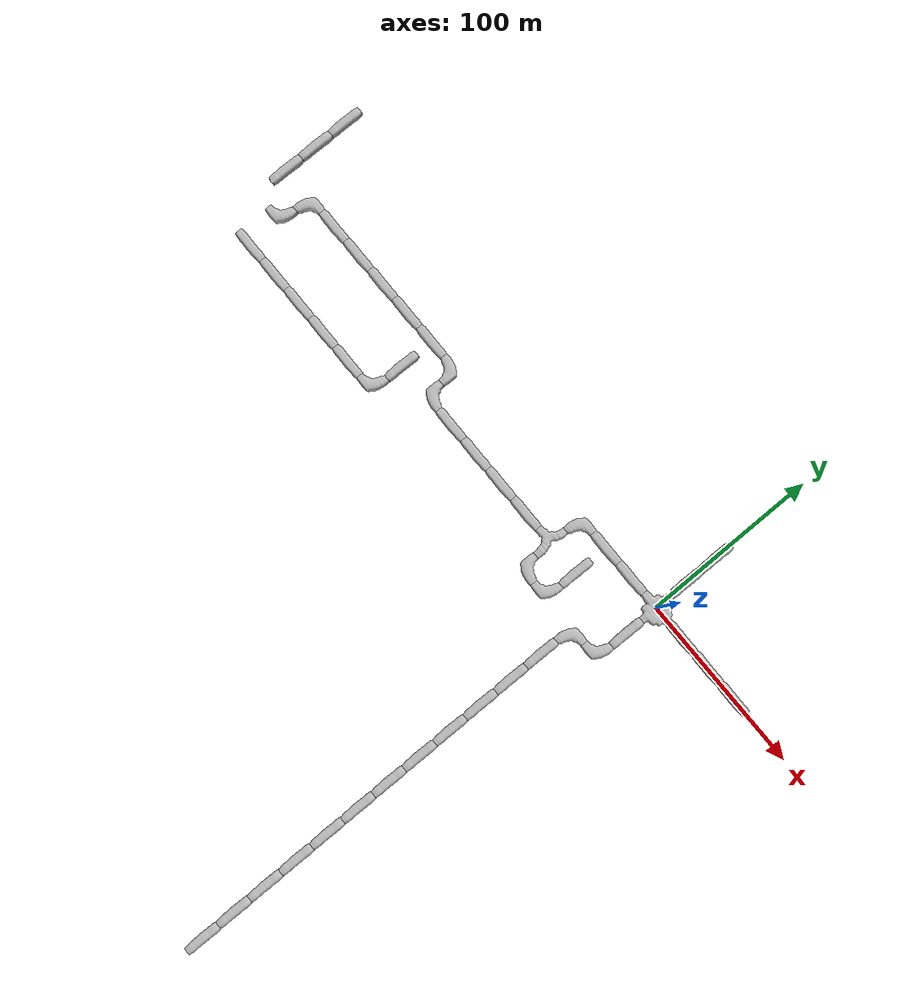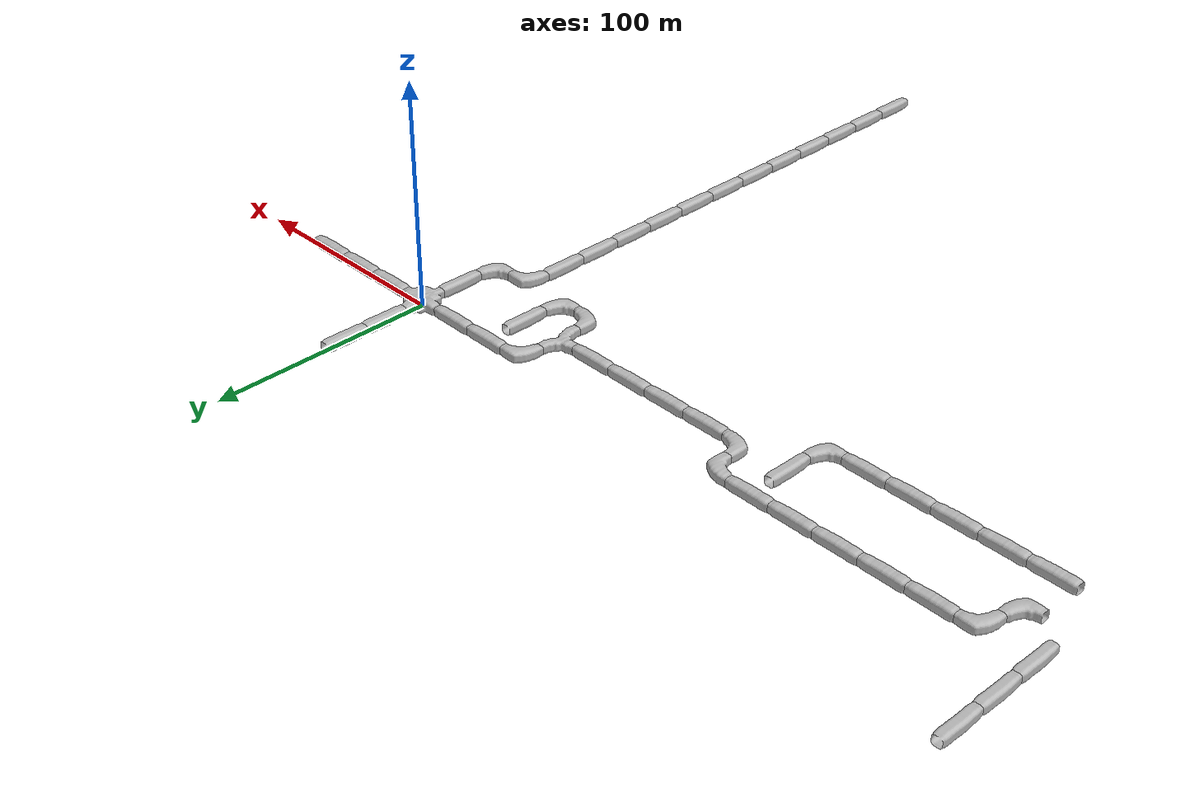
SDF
<sdf version="1.6">
 <world name="cave_16000_4">
  <include>
   <static>true</static>
   <name>cave_0_0</name>
   <pose>0 0 0 0 0 -1.5707963267948966</pose>
   <uri>model://cave_4way_20m</uri>
  </include>
  <include>
   <static>true</static>
   <name>cave_1_0</name>
   <pose>20 0 0 0 0 1.5707963267948966</pose>
   <uri>model://cave_straight_20m</uri>
  </include>
  <include>
   <static>true</static>
   <name>cave_2_0</name>
   <pose>40 0 0 0 0 1.5707963267948966</pose>
   <uri>model://cave_straight_20m</uri>
  </include>
  <include>
   <static>true</static>
   <name>cave_3_0</name>
   <pose>60 0 0 0 0 1.5707963267948966</pose>
   <uri>model://cave_straight_20m</uri>
  </include>
  <include>
   <static>true</static>
   <name>cave_0_-1</name>
   <pose>0 -20 0 0 0 0.0</pose>
   <uri>model://cave_straight_20m</uri>
  </include>
  <include>
   <static>true</static>
   <name>cave_0_-2</name>
   <pose>0 -40 0 0 0 1.5707963267948966</pose>
   <uri>model://cave_L_20m</uri>
  </include>
  <include>
   <static>true</static>
   <name>cave_-1_-2</name>
   <pose>-20 -40 0 0 0 -1.5707963267948966</pose>
   <uri>model://cave_L_20m</uri>
  </include>
  <include>
   <static>true</static>
   <name>cave_-1_-3</name>
   <pose>-20 -60 0 0 0 0.0</pose>
   <uri>model://cave_straight_20m</uri>
  </include>
  <include>
   <static>true</static>
   <name>cave_-1_-4</name>
   <pose>-20 -80 0 0 0 0.0</pose>
   <uri>model://cave_straight_20m</uri>
  </include>
  <include>
   <static>true</static>
   <name>cave_-1_-5</name>
   <pose>-20 -100 0 0 0 0.0</pose>
   <uri>model://cave_straight_20m</uri>
  </include>
  <include>
   <static>true</static>
   <name>cave_-1_-6</name>
   <pose>-20 -120 0 0 0 0.0</pose>
   <uri>model://cave_straight_20m</uri>
  </include>
  <include>
   <static>true</static>
   <name>cave_-1_-7</name>
   <pose>-20 -140 0 0 0 0.0</pose>
   <uri>model://cave_straight_20m</uri>
  </include>
  <include>
   <static>true</static>
   <name>cave_-1_-8</name>
   <pose>-20 -160 0 0 0 0.0</pose>
   <uri>model://cave_straight_20m</uri>
  </include>
  <include>
   <static>true</static>
   <name>cave_-1_-9</name>
   <pose>-20 -180 0 0 0 0.0</pose>
   <uri>model://cave_straight_20m</uri>
  </include>
  <include>
   <static>true</static>
   <name>cave_-1_-10</name>
   <pose>-20 -200 0 0 0 0.0</pose>
   <uri>model://cave_straight_20m</uri>
  </include>
  <include>
   <static>true</static>
   <name>cave_-1_-11</name>
   <pose>-20 -220 0 0 0 0.0</pose>
   <uri>model://cave_straight_20m</uri>
  </include>
  <include>
   <static>true</static>
   <name>cave_-1_-12</name>
   <pose>-20 -240 0 0 0 0.0</pose>
   <uri>model://cave_straight_20m</uri>
  </include>
  <include>
   <static>true</static>
   <name>cave_-1_-13</name>
   <pose>-20 -260 0 0 0 0.0</pose>
   <uri>model://cave_straight_20m</uri>
  </include>
  <include>
   <static>true</static>
   <name>cave_-1_-14</name>
   <pose>-20 -280 0 0 0 0.0</pose>
   <uri>model://cave_straight_20m</uri>
  </include>
  <include>
   <static>true</static>
   <name>cave_-1_0</name>
   <pose>-20 0 0 0 0 1.5707963267948966</pose>
   <uri>model://cave_straight_20m</uri>
  </include>
  <include>
   <static>true</static>
   <name>cave_-2_0</name>
   <pose>-40 0 0 0 0 1.5707963267948966</pose>
   <uri>model://cave_straight_20m</uri>
  </include>
  <include>
   <static>true</static>
   <name>cave_-3_0</name>
   <pose>-60 0 0 0 0 -1.5707963267948966</pose>
   <uri>model://cave_L_20m</uri>
  </include>
  <include>
   <static>true</static>
   <name>cave_-3_-1</name>
   <pose>-60 -20 0 0 0 1.5707963267948966</pose>
   <uri>model://cave_3way_20m</uri>
  </include>
  <include>
   <static>true</static>
   <name>cave_-3_-2</name>
   <pose>-60 -40 0 0 0 0.0</pose>
   <uri>model://cave_L_20m</uri>
  </include>
  <include>
   <static>true</static>
   <name>cave_-2_-2</name>
   <pose>-40 -40 0 0 0 1.5707963267948966</pose>
   <uri>model://cave_L_20m</uri>
  </include>
  <include>
   <static>true</static>
   <name>cave_-2_-1</name>
   <pose>-40 -20 0 0 0 0.0</pose>
   <uri>model://cave_straight_20m</uri>
  </include>
  <include>
   <static>true</static>
   <name>cave_-4_-1</name>
   <pose>-80 -20 0 0 0 1.5707963267948966</pose>
   <uri>model://cave_straight_20m</uri>
  </include>
  <include>
   <static>true</static>
   <name>cave_-5_-1</name>
   <pose>-100 -20 0 0 0 1.5707963267948966</pose>
   <uri>model://cave_straight_20m</uri>
  </include>
  <include>
   <static>true</static>
   <name>cave_-6_-1</name>
   <pose>-120 -20 0 0 0 1.5707963267948966</pose>
   <uri>model://cave_straight_20m</uri>
  </include>
  <include>
   <static>true</static>
   <name>cave_-7_-1</name>
   <pose>-140 -20 0 0 0 1.5707963267948966</pose>
   <uri>model://cave_straight_20m</uri>
  </include>
  <include>
   <static>true</static>
   <name>cave_-8_-1</name>
   <pose>-160 -20 0 0 0 0.0</pose>
   <uri>model://cave_L_20m</uri>
  </include>
  <include>
   <static>true</static>
   <name>cave_-8_0</name>
   <pose>-160 0 0 0 0 3.141592653589793</pose>
   <uri>model://cave_L_20m</uri>
  </include>
  <include>
   <static>true</static>
   <name>cave_-9_0</name>
   <pose>-180 0 0 0 0 1.5707963267948966</pose>
   <uri>model://cave_straight_20m</uri>
  </include>
  <include>
   <static>true</static>
   <name>cave_-10_0</name>
   <pose>-200 0 0 0 0 1.5707963267948966</pose>
   <uri>model://cave_straight_20m</uri>
  </include>
  <include>
   <static>true</static>
   <name>cave_-11_0</name>
   <pose>-220 0 0 0 0 1.5707963267948966</pose>
   <uri>model://cave_straight_20m</uri>
  </include>
  <include>
   <static>true</static>
   <name>cave_-12_0</name>
   <pose>-240 0 0 0 0 1.5707963267948966</pose>
   <uri>model://cave_straight_20m</uri>
  </include>
  <include>
   <static>true</static>
   <name>cave_-13_0</name>
   <pose>-260 0 0 0 0 1.5707963267948966</pose>
   <uri>model://cave_straight_20m</uri>
  </include>
  <include>
   <static>true</static>
   <name>cave_-14_0</name>
   <pose>-280 0 0 0 0 -1.5707963267948966</pose>
   <uri>model://cave_L_20m</uri>
  </include>
  <include>
   <static>true</static>
   <name>cave_-14_-1</name>
   <pose>-280 -20 0 0 0 1.5707963267948966</pose>
   <uri>model://cave_L_20m</uri>
  </include>
  <include>
   <static>true</static>
   <name>cave_-15_0</name>
   <pose>-300 0 0 0 0 0.0</pose>
   <uri>model://cave_straight_20m</uri>
  </include>
  <include>
   <static>true</static>
   <name>cave_-15_1</name>
   <pose>-300 20 0 0 0 0.0</pose>
   <uri>model://cave_straight_20m</uri>
  </include>
  <include>
   <static>true</static>
   <name>cave_-15_2</name>
   <pose>-300 40 0 0 0 0.0</pose>
   <uri>model://cave_straight_20m</uri>
  </include>
  <include>
   <static>true</static>
   <name>cave_-14_-2</name>
   <pose>-280 -40 0 0 0 1.5707963267948966</pose>
   <uri>model://cave_straight_20m</uri>
  </include>
  <include>
   <static>true</static>
   <name>cave_-13_-2</name>
   <pose>-260 -40 0 0 0 1.5707963267948966</pose>
   <uri>model://cave_straight_20m</uri>
  </include>
  <include>
   <static>true</static>
   <name>cave_-12_-2</name>
   <pose>-240 -40 0 0 0 1.5707963267948966</pose>
   <uri>model://cave_straight_20m</uri>
  </include>
  <include>
   <static>true</static>
   <name>cave_-11_-2</name>
   <pose>-220 -40 0 0 0 1.5707963267948966</pose>
   <uri>model://cave_straight_20m</uri>
  </include>
  <include>
   <static>true</static>
   <name>cave_-10_-2</name>
   <pose>-200 -40 0 0 0 1.5707963267948966</pose>
   <uri>model://cave_straight_20m</uri>
  </include>
  <include>
   <static>true</static>
   <name>cave_-9_-2</name>
   <pose>-180 -40 0 0 0 1.5707963267948966</pose>
   <uri>model://cave_L_20m</uri>
  </include>
  <include>
   <static>true</static>
   <name>cave_-9_-1</name>
   <pose>-180 -20 0 0 0 0.0</pose>
   <uri>model://cave_straight_20m</uri>
  </include>
  <include>
   <static>true</static>
   <name>cave_0_1</name>
   <pose>0 20 0 0 0 0.0</pose>
   <uri>model://cave_straight_20m</uri>
  </include>
  <include>
   <static>true</static>
   <name>cave_0_2</name>
   <pose>0 40 0 0 0 0.0</pose>
   <uri>model://cave_straight_20m</uri>
  </include>
 </world>
</sdf>
